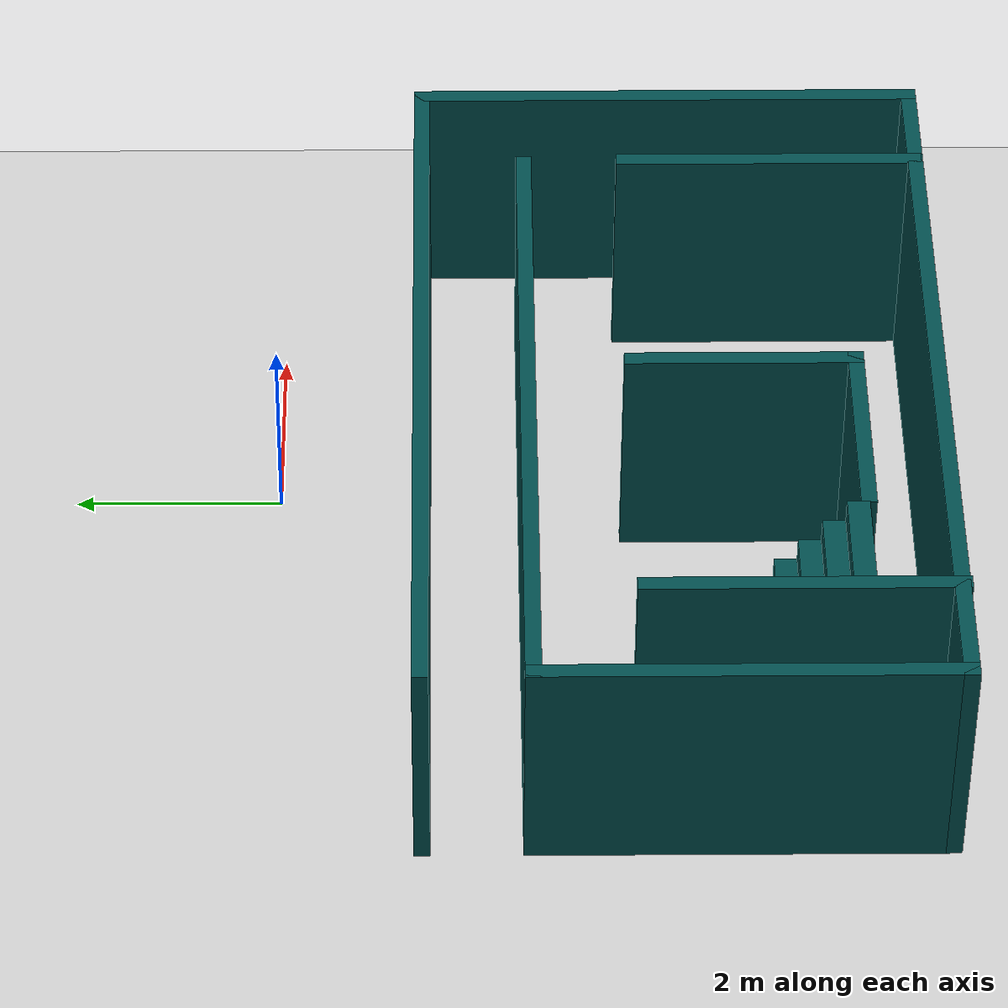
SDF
<sdf version='1.8'>
  <world name='assess'>
    <scene>
      <ambient>1 1 1 1</ambient>
      <background>0.8 0.8 0.8 1</background>
      <shadows>1</shadows>
    </scene>
    <light name='sun' type='directional'>
      <cast_shadows>0</cast_shadows>
      <pose>0 4 2 0 -0 0</pose>
      <diffuse>0.8 0.8 0.8 1</diffuse>
      <specular>0.2 0.2 0.2 1</specular>
      <attenuation>
        <range>1000</range>
        <constant>0.90000000000000002</constant>
        <linear>0.01</linear>
        <quadratic>0.001</quadratic>
      </attenuation>
      <direction>-0.5 0.1 -0.9</direction>
      <spot>
        <inner_angle>0</inner_angle>
        <outer_angle>0</outer_angle>
        <falloff>0</falloff>
      </spot>
    </light>
    <gravity>0 0 -9.8</gravity>
    <magnetic_field>6e-06 2.3e-05 -4.2e-05</magnetic_field>
    <atmosphere type='adiabatic'/>
    <physics type='ode'>
      <max_step_size>0.001</max_step_size>
      <real_time_factor>1</real_time_factor>
      <real_time_update_rate>1000</real_time_update_rate>
    </physics>
    <model name='ground_plane'>
      <static>1</static>
      <link name='link'>
        <collision name='collision'>
          <geometry>
            <plane>
              <normal>0 0 1</normal>
              <size>100 100</size>
            </plane>
          </geometry>
          <surface>
            <friction>
              <ode/>
            </friction>
            <bounce/>
            <contact/>
          </surface>
        </collision>
        <visual name='visual'>
          <geometry>
            <plane>
              <normal>0 0 1</normal>
              <size>100 100</size>
            </plane>
          </geometry>
          <material>
            <ambient>0.8 0.8 0.8 1</ambient>
            <diffuse>0.8 0.8 0.8 1</diffuse>
            <specular>0.8 0.8 0.8 1</specular>
          </material>
        </visual>
      </link>
      <pose>0 0 0 0 -0 0</pose>
    </model>
    <model name='sphere'>
      <pose>0.932485 -4.91872 0.1 0 -0 0</pose>
      <link name='sphere_link'>
        <inertial>
          <inertia>
            <ixx>0.0040000000000000001</ixx>
            <ixy>0</ixy>
            <ixz>0</ixz>
            <iyy>0.0040000000000000001</iyy>
            <iyz>0</iyz>
            <izz>0.0040000000000000001</izz>
          </inertia>
          <mass>1</mass>
        </inertial>
        <collision name='sphere_collision'>
          <geometry>
            <sphere>
              <radius>0.10000000000000001</radius>
            </sphere>
          </geometry>
          <surface>
            <friction>
              <ode/>
            </friction>
            <bounce/>
            <contact/>
          </surface>
        </collision>
        <visual name='sphere_visual'>
          <geometry>
            <sphere>
              <radius>0.10000000000000001</radius>
            </sphere>
          </geometry>
          <material>
            <ambient>0.6 0.1 1 1</ambient>
            <diffuse>0.6 0.1 1 1</diffuse>
            <specular>0.6 0.1 1 1</specular>
          </material>
        </visual>
      </link>
    </model>
    <include>
      <uri>file:///home/ros/assess_rbot_ws/src/rbot_pkg/world/assess_world/house2022</uri>
      <name>house</name>
      <pose>-0.55 -3.16 -0.13 0 -0 0</pose>
    </include>
    <model name='sphere_0'>
      <pose>-2.91501 -4.80288 0.099999 0 -0 0</pose>
      <link name='sphere_link'>
        <inertial>
          <inertia>
            <ixx>0.0040000000000000001</ixx>
            <ixy>0</ixy>
            <ixz>0</ixz>
            <iyy>0.0040000000000000001</iyy>
            <iyz>0</iyz>
            <izz>0.0040000000000000001</izz>
          </inertia>
          <mass>1</mass>
        </inertial>
        <collision name='sphere_collision'>
          <geometry>
            <sphere>
              <radius>0.10000000000000001</radius>
            </sphere>
          </geometry>
          <surface>
            <friction>
              <ode/>
            </friction>
            <bounce/>
            <contact/>
          </surface>
        </collision>
        <visual name='sphere_visual'>
          <geometry>
            <sphere>
              <radius>0.10000000000000001</radius>
            </sphere>
          </geometry>
          <material>
            <ambient>0.6 0.1 1 1</ambient>
            <diffuse>0.6 0.1 1 1</diffuse>
            <specular>0.6 0.1 1 1</specular>
          </material>
        </visual>
      </link>
    </model>
    <model name='sphere_1'>
      <pose>-2.90308 -3.67776 0.469999 -0.354352 0 0</pose>
      <link name='sphere_link'>
        <inertial>
          <inertia>
            <ixx>0.0040000000000000001</ixx>
            <ixy>0</ixy>
            <ixz>0</ixz>
            <iyy>0.0040000000000000001</iyy>
            <iyz>0</iyz>
            <izz>0.0040000000000000001</izz>
          </inertia>
          <mass>1</mass>
        </inertial>
        <collision name='sphere_collision'>
          <geometry>
            <sphere>
              <radius>0.10000000000000001</radius>
            </sphere>
          </geometry>
          <surface>
            <friction>
              <ode/>
            </friction>
            <bounce/>
            <contact/>
          </surface>
        </collision>
        <visual name='sphere_visual'>
          <geometry>
            <sphere>
              <radius>0.10000000000000001</radius>
            </sphere>
          </geometry>
          <material>
            <ambient>0.6 0.1 1 1</ambient>
            <diffuse>0.6 0.1 1 1</diffuse>
            <specular>0.6 0.1 1 1</specular>
          </material>
        </visual>
      </link>
    </model>
  </world>
</sdf>

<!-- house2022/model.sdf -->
<sdf version='1.7'>
  <model name='house2022'>
    <pose>-0.546 -3.16472 0 0 -0 0</pose>
    <link name='Stairs_1'>
      <visual name='Stairs_1_Visual_0'>
        <pose>-2.31393 -0.308419 0.125 0 -0 0</pose>
        <geometry>
          <box>
            <size>0.965 0.2109 0.25</size>
          </box>
        </geometry>
        <material>
          <ambient>0. 0.3 0.3 1</ambient>
          <diffuse>0. 0.3 0.3 1</diffuse>
          <specular>0. 0.3 0.3 1</specular>
        </material>
        <meta>
          <layer>0</layer>
        </meta>
      </visual>
      <collision name='Stairs_1_Collision_0'>
        <geometry>
          <box>
            <size>0.965 0.2109 0.25</size>
          </box>
        </geometry>
        <pose>-2.31393 -0.308419 0.125 0 -0 0</pose>
      </collision>
      <visual name='Stairs_1_Visual_1'>
        <pose>-2.31393 -0.519319 0.375 0 -0 0</pose>
        <geometry>
          <box>
            <size>0.965 0.2109 0.25</size>
          </box>
        </geometry>
        <material>
          <ambient>0. 0.3 0.3 1</ambient>
          <diffuse>0. 0.3 0.3 1</diffuse>
          <specular>0. 0.3 0.3 1</specular>
        </material>
        <meta>
          <layer>0</layer>
        </meta>
      </visual>
      <collision name='Stairs_1_Collision_1'>
        <geometry>
          <box>
            <size>0.965 0.2109 0.25</size>
          </box>
        </geometry>
        <pose>-2.31393 -0.519319 0.375 0 -0 0</pose>
      </collision>
      <visual name='Stairs_1_Visual_2'>
        <pose>-2.31393 -0.730219 0.625 0 -0 0</pose>
        <geometry>
          <box>
            <size>0.965 0.2109 0.25</size>
          </box>
        </geometry>
        <material>
          <ambient>0. 0.3 0.3 1</ambient>
          <diffuse>0. 0.3 0.3 1</diffuse>
          <specular>0. 0.3 0.3 1</specular>
        </material>
        <meta>
          <layer>0</layer>
        </meta>
      </visual>
      <collision name='Stairs_1_Collision_2'>
        <geometry>
          <box>
            <size>0.965 0.2109 0.25</size>
          </box>
        </geometry>
        <pose>-2.31393 -0.730219 0.625 0 -0 0</pose>
      </collision>
      <visual name='Stairs_1_Visual_3'>
        <pose>-2.31393 -0.941119 0.875 0 -0 0</pose>
        <geometry>
          <box>
            <size>0.965 0.2109 0.25</size>
          </box>
        </geometry>
        <material>
          <ambient>0. 0.3 0.3 1</ambient>
          <diffuse>0. 0.3 0.3 1</diffuse>
          <specular>0. 0.3 0.3 1</specular>
        </material>
        <meta>
          <layer>0</layer>
        </meta>
      </visual>
      <collision name='Stairs_1_Collision_3'>
        <geometry>
          <box>
            <size>0.965 0.2109 0.25</size>
          </box>
        </geometry>
        <pose>-2.31393 -0.941119 0.875 0 -0 0</pose>
      </collision>
      <visual name='Stairs_1_Visual_4'>
        <pose>-2.31393 -1.15202 1.125 0 -0 0</pose>
        <geometry>
          <box>
            <size>0.965 0.2109 0.25</size>
          </box>
        </geometry>
        <material>
          <ambient>0. 0.3 0.3 1</ambient>
          <diffuse>0. 0.3 0.3 1</diffuse>
          <specular>0. 0.3 0.3 1</specular>
        </material>
        <meta>
          <layer>0</layer>
        </meta>
      </visual>
      <collision name='Stairs_1_Collision_4'>
        <geometry>
          <box>
            <size>0.965 0.2109 0.25</size>
          </box>
        </geometry>
        <pose>-2.31393 -1.15202 1.125 0 -0 0</pose>
      </collision>
      <visual name='Stairs_1_Visual_5'>
        <pose>-2.31393 -1.36292 1.375 0 -0 0</pose>
        <geometry>
          <box>
            <size>0.965 0.2109 0.25</size>
          </box>
        </geometry>
        <material>
          <ambient>0. 0.3 0.3 1</ambient>
          <diffuse>0. 0.3 0.3 1</diffuse>
          <specular>0. 0.3 0.3 1</specular>
        </material>
        <meta>
          <layer>0</layer>
        </meta>
      </visual>
      <collision name='Stairs_1_Collision_5'>
        <geometry>
          <box>
            <size>0.965 0.2109 0.25</size>
          </box>
        </geometry>
        <pose>-2.31393 -1.36292 1.375 0 -0 0</pose>
      </collision>
      <visual name='Stairs_1_Visual_6'>
        <pose>-2.31393 -1.57382 1.625 0 -0 0</pose>
        <geometry>
          <box>
            <size>0.965 0.2109 0.25</size>
          </box>
        </geometry>
        <material>
          <ambient>0. 0.3 0.3 1</ambient>
          <diffuse>0. 0.3 0.3 1</diffuse>
          <specular>0. 0.3 0.3 1</specular>
        </material>
        <meta>
          <layer>0</layer>
        </meta>
      </visual>
      <collision name='Stairs_1_Collision_6'>
        <geometry>
          <box>
            <size>0.965 0.2109 0.25</size>
          </box>
        </geometry>
        <pose>-2.31393 -1.57382 1.625 0 -0 0</pose>
      </collision>
      <visual name='Stairs_1_Visual_7'>
        <pose>-2.31393 -1.78472 1.875 0 -0 0</pose>
        <geometry>
          <box>
            <size>0.965 0.2109 0.25</size>
          </box>
        </geometry>
        <material>
          <ambient>0. 0.3 0.3 1</ambient>
          <diffuse>0. 0.3 0.3 1</diffuse>
          <specular>0. 0.3 0.3 1</specular>
        </material>
        <meta>
          <layer>0</layer>
        </meta>
      </visual>
      <collision name='Stairs_1_Collision_7'>
        <geometry>
          <box>
            <size>0.965 0.2109 0.25</size>
          </box>
        </geometry>
        <pose>-2.31393 -1.78472 1.875 0 -0 0</pose>
      </collision>
      <visual name='Stairs_1_Visual_8'>
        <pose>-2.31393 -1.99562 2.125 0 -0 0</pose>
        <geometry>
          <box>
            <size>0.965 0.2109 0.25</size>
          </box>
        </geometry>
        <material>
          <ambient>0. 0.3 0.3 1</ambient>
          <diffuse>0. 0.3 0.3 1</diffuse>
          <specular>0. 0.3 0.3 1</specular>
        </material>
        <meta>
          <layer>0</layer>
        </meta>
      </visual>
      <collision name='Stairs_1_Collision_8'>
        <geometry>
          <box>
            <size>0.965 0.2109 0.25</size>
          </box>
        </geometry>
        <pose>-2.31393 -1.99562 2.125 0 -0 0</pose>
      </collision>
      <visual name='Stairs_1_Visual_9'>
        <pose>-2.31393 -2.20652 2.375 0 -0 0</pose>
        <geometry>
          <box>
            <size>0.965 0.2109 0.25</size>
          </box>
        </geometry>
        <material>
          <ambient>0. 0.3 0.3 1</ambient>
          <diffuse>0. 0.3 0.3 1</diffuse>
          <specular>0. 0.3 0.3 1</specular>
        </material>
        <meta>
          <layer>0</layer>
        </meta>
      </visual>
      <collision name='Stairs_1_Collision_9'>
        <geometry>
          <box>
            <size>0.965 0.2109 0.25</size>
          </box>
        </geometry>
        <pose>-2.31393 -2.20652 2.375 0 -0 0</pose>
      </collision>
    </link>
    <link name='Wall_10'>
      <collision name='Wall_10_Collision'>
        <geometry>
          <box>
            <size>8 0.15 2.5</size>
          </box>
        </geometry>
        <pose>0 0 1.25 0 -0 0</pose>
      </collision>
      <visual name='Wall_10_Visual'>
        <pose>0 0 1.25 0 -0 0</pose>
        <geometry>
          <box>
            <size>8 0.15 2.5</size>
          </box>
        </geometry>
        <material>
          <ambient>0. 0.3 0.3 1</ambient>
          <diffuse>0. 0.3 0.3 1</diffuse>
          <specular>0. 0.3 0.3 1</specular>
        </material>
        <meta>
          <layer>0</layer>
        </meta>
      </visual>
      <pose>0 -3.07028 0 0 -0 3.14159</pose>
    </link>
    <link name='Wall_13'>
      <collision name='Wall_13_Collision'>
        <geometry>
          <box>
            <size>4 0.15 2.5</size>
          </box>
        </geometry>
        <pose>0 0 1.25 0 -0 0</pose>
      </collision>
      <visual name='Wall_13_Visual'>
        <pose>0 0 1.25 0 -0 0</pose>
        <geometry>
          <box>
            <size>4 0.15 2.5</size>
          </box>
        </geometry>
        <material>
          <ambient>0. 0.3 0.3 1</ambient>
          <diffuse>0. 0.3 0.3 1</diffuse>
          <specular>0. 0.3 0.3 1</specular>
        </material>
        <meta>
          <layer>0</layer>
        </meta>
      </visual>
      <pose>-3.925 -1.14528 0 0 -0 1.5708</pose>
    </link>
    <link name='Wall_14'>
      <collision name='Wall_14_Collision'>
        <geometry>
          <box>
            <size>7 0.15 2.5</size>
          </box>
        </geometry>
        <pose>0 0 1.25 0 -0 0</pose>
      </collision>
      <visual name='Wall_14_Visual'>
        <pose>0 0 1.25 0 -0 0</pose>
        <geometry>
          <box>
            <size>7 0.15 2.5</size>
          </box>
        </geometry>
        <material>
          <ambient>0. 0.3 0.3 1</ambient>
          <diffuse>0. 0.3 0.3 1</diffuse>
          <specular>0. 0.3 0.3 1</specular>
        </material>
        <meta>
          <layer>0</layer>
        </meta>
      </visual>
      <pose>-0.5 0.77972 0 0 -0 0</pose>
    </link>
    <link name='Wall_16'>
      <collision name='Wall_16_Collision'>
        <geometry>
          <box>
            <size>3 0.15 2.5</size>
          </box>
        </geometry>
        <pose>0 0 1.25 0 -0 0</pose>
      </collision>
      <visual name='Wall_16_Visual'>
        <pose>0 0 1.25 0 -0 0</pose>
        <geometry>
          <box>
            <size>3 0.15 2.5</size>
          </box>
        </geometry>
        <material>
          <ambient>0. 0.3 0.3 1</ambient>
          <diffuse>0. 0.3 0.3 1</diffuse>
          <specular>0. 0.3 0.3 1</specular>
        </material>
        <meta>
          <layer>0</layer>
        </meta>
      </visual>
      <pose>2.94732 -1.63022 0 0 -0 -1.5708</pose>
    </link>
    <link name='Wall_18'>
      <collision name='Wall_18_Collision'>
        <geometry>
          <box>
            <size>3 0.15 2.5</size>
          </box>
        </geometry>
        <pose>0 0 1.25 0 -0 0</pose>
      </collision>
      <visual name='Wall_18_Visual'>
        <pose>0 0 1.25 0 -0 0</pose>
        <geometry>
          <box>
            <size>3 0.15 2.5</size>
          </box>
        </geometry>
        <material>
          <ambient>0. 0.3 0.3 1</ambient>
          <diffuse>0. 0.3 0.3 1</diffuse>
          <specular>0. 0.3 0.3 1</specular>
        </material>
        <meta>
          <layer>0</layer>
        </meta>
      </visual>
      <pose>-2.86018 -1.66472 0 0 -0 -1.5708</pose>
    </link>
    <link name='Wall_20'>
      <collision name='Wall_20_Collision'>
        <geometry>
          <box>
            <size>2.25 0.15 2.5</size>
          </box>
        </geometry>
        <pose>0 0 1.25 0 -0 0</pose>
      </collision>
      <visual name='Wall_20_Visual'>
        <pose>0 0 1.25 0 -0 0</pose>
        <geometry>
          <box>
            <size>2.25 0.15 2.5</size>
          </box>
        </geometry>
        <material>
          <ambient>0. 0.3 0.3 1</ambient>
          <diffuse>0. 0.3 0.3 1</diffuse>
          <specular>0. 0.3 0.3 1</specular>
        </material>
        <meta>
          <layer>0</layer>
        </meta>
      </visual>
      <pose>0.083822 -1.25522 0 0 -0 -1.5708</pose>
    </link>
    <link name='Wall_21'>
      <collision name='Wall_21_Collision'>
        <geometry>
          <box>
            <size>2 0.15 2.5</size>
          </box>
        </geometry>
        <pose>0 0 1.25 0 -0 0</pose>
      </collision>
      <visual name='Wall_21_Visual'>
        <pose>0 0 1.25 0 -0 0</pose>
        <geometry>
          <box>
            <size>2 0.15 2.5</size>
          </box>
        </geometry>
        <material>
          <ambient>0. 0.3 0.3 1</ambient>
          <diffuse>0. 0.3 0.3 1</diffuse>
          <specular>0. 0.3 0.3 1</specular>
        </material>
        <meta>
          <layer>0</layer>
        </meta>
      </visual>
      <pose>-0.841178 -2.30522 0 0 -0 3.14159</pose>
    </link>
    <link name='Wall_6'>
      <collision name='Wall_6_Collision'>
        <geometry>
          <box>
            <size>8 0.15 2.5</size>
          </box>
        </geometry>
        <pose>0 0 1.25 0 -0 0</pose>
      </collision>
      <visual name='Wall_6_Visual'>
        <pose>0 0 1.25 0 -0 0</pose>
        <geometry>
          <box>
            <size>8 0.15 2.5</size>
          </box>
        </geometry>
        <material>
          <ambient>0. 0.3 0.3 1</ambient>
          <diffuse>0. 0.3 0.3 1</diffuse>
          <specular>0. 0.3 0.3 1</specular>
        </material>
        <meta>
          <layer>0</layer>
        </meta>
      </visual>
      <pose>0 1.77972 0 0 -0 3.14159</pose>
    </link>
    <link name='Wall_9'>
      <collision name='Wall_9_Collision'>
        <geometry>
          <box>
            <size>5 0.15 2.5</size>
          </box>
        </geometry>
        <pose>0 0 1.25 0 -0 0</pose>
      </collision>
      <visual name='Wall_9_Visual'>
        <pose>0 0 1.25 0 -0 0</pose>
        <geometry>
          <box>
            <size>5 0.15 2.5</size>
          </box>
        </geometry>
        <material>
          <ambient>0. 0.3 0.3 1</ambient>
          <diffuse>0. 0.3 0.3 1</diffuse>
          <specular>0. 0.3 0.3 1</specular>
        </material>
        <meta>
          <layer>0</layer>
        </meta>
      </visual>
      <pose>3.925 -0.64528 0 0 -0 -1.5708</pose>
    </link>
    <static>1</static>
  </model>
</sdf>
